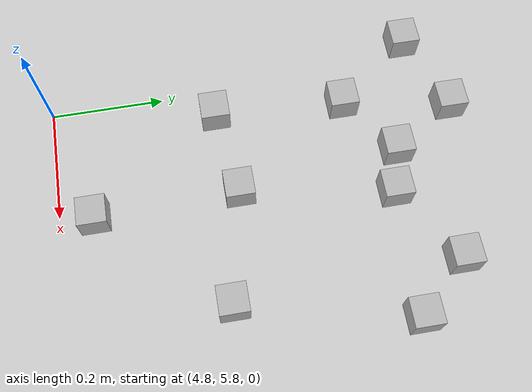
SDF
<sdf version="1.6">
 <world name="default">
  <model name="ground_plane">
   <static>1</static>
   <link name="link">
    <collision name="collision">
     <geometry><plane><normal>0 0 1</normal><size>100 100</size></plane></geometry>
     <surface><friction><ode><mu>100</mu><mu2>50</mu2></ode></friction></surface>
    </collision>
    <visual name="visual">
     <cast_shadows>0</cast_shadows>
     <geometry><plane><normal>0 0 1</normal><size>100 100</size></plane></geometry>
     <material>
      <script><uri>file://media/materials/scripts/gazebo.material</uri><name>Gazebo/Grey</name></script>
     </material>
    </visual>
   </link>
  </model>
  <model name="at108">
   <static>0</static>
   <link name="link">
    <inertial>
     <mass>0.01</mass>
     <inertia><ixx>4e-05</ixx><ixy>0</ixy><ixz>0</ixz><iyy>4e-05</iyy><iyz>0</iyz><izz>4e-05</izz></inertia>
    </inertial>
    <visual name="visual">
     <geometry><box><size>0.05 0.05 0.05</size></box></geometry>
     <material>
      <script>
       <uri>model://at0/materials/scripts</uri>
       <uri>model://at0/materials/textures</uri>
       <name>at0/Diffuse</name>
      </script>
     </material>
    </visual>
    <collision name="collision">
     <geometry><box><size>0.05 0.05 0.05</size></box></geometry>
     <surface><friction><ode><mu>0.8</mu><mu2>0.7</mu2></ode></friction></surface>
    </collision>
   </link>
   <pose>5.00316 6.11146 0.025 0 -0 0</pose>
  </model>
  <model name="at109">
   <static>0</static>
   <link name="link">
    <inertial>
     <mass>0.01</mass>
     <inertia><ixx>4e-05</ixx><ixy>0</ixy><ixz>0</ixz><iyy>4e-05</iyy><iyz>0</iyz><izz>4e-05</izz></inertia>
    </inertial>
    <visual name="visual">
     <geometry><box><size>0.05 0.05 0.05</size></box></geometry>
     <material>
      <script>
       <uri>model://at0/materials/scripts</uri>
       <uri>model://at0/materials/textures</uri>
       <name>at0/Diffuse</name>
      </script>
     </material>
    </visual>
    <collision name="collision">
     <geometry><box><size>0.05 0.05 0.05</size></box></geometry>
     <surface><friction><ode><mu>0.8</mu><mu2>0.7</mu2></ode></friction></surface>
    </collision>
   </link>
   <pose>5.19801 6.07112 0.025 0 -0 0</pose>
  </model>
  <model name="at112">
   <static>0</static>
   <link name="link">
    <inertial>
     <mass>0.01</mass>
     <inertia><ixx>4e-05</ixx><ixy>0</ixy><ixz>0</ixz><iyy>4e-05</iyy><iyz>0</iyz><izz>4e-05</izz></inertia>
    </inertial>
    <visual name="visual">
     <geometry><box><size>0.05 0.05 0.05</size></box></geometry>
     <material>
      <script>
       <uri>model://at0/materials/scripts</uri>
       <uri>model://at0/materials/textures</uri>
       <name>at0/Diffuse</name>
      </script>
     </material>
    </visual>
    <collision name="collision">
     <geometry><box><size>0.05 0.05 0.05</size></box></geometry>
     <surface><friction><ode><mu>0.8</mu><mu2>0.7</mu2></ode></friction></surface>
    </collision>
   </link>
   <pose>5.18187 6.45816 0.025 0 -0 0</pose>
  </model>
  <model name="at114">
   <static>0</static>
   <link name="link">
    <inertial>
     <mass>0.01</mass>
     <inertia><ixx>4e-05</ixx><ixy>0</ixy><ixz>0</ixz><iyy>4e-05</iyy><iyz>0</iyz><izz>4e-05</izz></inertia>
    </inertial>
    <visual name="visual">
     <geometry><box><size>0.05 0.05 0.05</size></box></geometry>
     <material>
      <script>
       <uri>model://at0/materials/scripts</uri>
       <uri>model://at0/materials/textures</uri>
       <name>at0/Diffuse</name>
      </script>
     </material>
    </visual>
    <collision name="collision">
     <geometry><box><size>0.05 0.05 0.05</size></box></geometry>
     <surface><friction><ode><mu>0.8</mu><mu2>0.7</mu2></ode></friction></surface>
    </collision>
   </link>
   <pose>5.2675 6.36795 0.025 0 -0 0</pose>
  </model>
  <model name="at115">
   <static>0</static>
   <link name="link">
    <inertial>
     <mass>0.01</mass>
     <inertia><ixx>4e-05</ixx><ixy>0</ixy><ixz>0</ixz><iyy>4e-05</iyy><iyz>0</iyz><izz>4e-05</izz></inertia>
    </inertial>
    <visual name="visual">
     <geometry><box><size>0.05 0.05 0.05</size></box></geometry>
     <material>
      <script>
       <uri>model://at0/materials/scripts</uri>
       <uri>model://at0/materials/textures</uri>
       <name>at0/Diffuse</name>
      </script>
     </material>
    </visual>
    <collision name="collision">
     <geometry><box><size>0.05 0.05 0.05</size></box></geometry>
     <surface><friction><ode><mu>0.8</mu><mu2>0.7</mu2></ode></friction></surface>
    </collision>
   </link>
   <pose>4.8491 6.09117 0.025 0 -0 0</pose>
  </model>
  <model name="at116">
   <static>0</static>
   <link name="link">
    <inertial>
     <mass>0.01</mass>
     <inertia><ixx>4e-05</ixx><ixy>0</ixy><ixz>0</ixz><iyy>4e-05</iyy><iyz>0</iyz><izz>4e-05</izz></inertia>
    </inertial>
    <visual name="visual">
     <geometry><box><size>0.05 0.05 0.05</size></box></geometry>
     <material>
      <script>
       <uri>model://at0/materials/scripts</uri>
       <uri>model://at0/materials/textures</uri>
       <name>at0/Diffuse</name>
      </script>
     </material>
    </visual>
    <collision name="collision">
     <geometry><box><size>0.05 0.05 0.05</size></box></geometry>
     <surface><friction><ode><mu>0.8</mu><mu2>0.7</mu2></ode></friction></surface>
    </collision>
   </link>
   <pose>4.96945 6.39709 0.024997 -2.9e-05 -2.9e-05 -0.000431</pose>
  </model>
  <model name="at117">
   <static>0</static>
   <link name="link">
    <inertial>
     <mass>0.01</mass>
     <inertia><ixx>4e-05</ixx><ixy>0</ixy><ixz>0</ixz><iyy>4e-05</iyy><iyz>0</iyz><izz>4e-05</izz></inertia>
    </inertial>
    <visual name="visual">
     <geometry><box><size>0.05 0.05 0.05</size></box></geometry>
     <material>
      <script>
       <uri>model://at0/materials/scripts</uri>
       <uri>model://at0/materials/textures</uri>
       <name>at0/Diffuse</name>
      </script>
     </material>
    </visual>
    <collision name="collision">
     <geometry><box><size>0.05 0.05 0.05</size></box></geometry>
     <surface><friction><ode><mu>0.8</mu><mu2>0.7</mu2></ode></friction></surface>
    </collision>
   </link>
   <pose>5.01147 5.86118 0.025 0 -0 0</pose>
  </model>
  <model name="at118">
   <static>0</static>
   <link name="link">
    <inertial>
     <mass>0.01</mass>
     <inertia><ixx>4e-05</ixx><ixy>0</ixy><ixz>0</ixz><iyy>4e-05</iyy><iyz>0</iyz><izz>4e-05</izz></inertia>
    </inertial>
    <visual name="visual">
     <geometry><box><size>0.05 0.05 0.05</size></box></geometry>
     <material>
      <script>
       <uri>model://at0/materials/scripts</uri>
       <uri>model://at0/materials/textures</uri>
       <name>at0/Diffuse</name>
      </script>
     </material>
    </visual>
    <collision name="collision">
     <geometry><box><size>0.05 0.05 0.05</size></box></geometry>
     <surface><friction><ode><mu>0.8</mu><mu2>0.7</mu2></ode></friction></surface>
    </collision>
   </link>
   <pose>5.04699 6.37593 0.025 0 -0 0</pose>
  </model>
  <model name="at121">
   <static>0</static>
   <link name="link">
    <inertial>
     <mass>0.01</mass>
     <inertia><ixx>4e-05</ixx><ixy>0</ixy><ixz>0</ixz><iyy>4e-05</iyy><iyz>0</iyz><izz>4e-05</izz></inertia>
    </inertial>
    <visual name="visual">
     <geometry><box><size>0.05 0.05 0.05</size></box></geometry>
     <material>
      <script>
       <uri>model://at0/materials/scripts</uri>
       <uri>model://at0/materials/textures</uri>
       <name>at0/Diffuse</name>
      </script>
     </material>
    </visual>
    <collision name="collision">
     <geometry><box><size>0.05 0.05 0.05</size></box></geometry>
     <surface><friction><ode><mu>0.8</mu><mu2>0.7</mu2></ode></friction></surface>
    </collision>
   </link>
   <pose>4.75407 6.45955 0.025 0 -0 0</pose>
  </model>
  <model name="at122">
   <static>0</static>
   <link name="link">
    <inertial>
     <mass>0.01</mass>
     <inertia><ixx>4e-05</ixx><ixy>0</ixy><ixz>0</ixz><iyy>4e-05</iyy><iyz>0</iyz><izz>4e-05</izz></inertia>
    </inertial>
    <visual name="visual">
     <geometry><box><size>0.05 0.05 0.05</size></box></geometry>
     <material>
      <script>
       <uri>model://at0/materials/scripts</uri>
       <uri>model://at0/materials/textures</uri>
       <name>at0/Diffuse</name>
      </script>
     </material>
    </visual>
    <collision name="collision">
     <geometry><box><size>0.05 0.05 0.05</size></box></geometry>
     <surface><friction><ode><mu>0.8</mu><mu2>0.7</mu2></ode></friction></surface>
    </collision>
   </link>
   <pose>4.86264 6.32152 0.025 0 -0 0</pose>
  </model>
  <model name="at123">
   <static>0</static>
   <link name="link">
    <inertial>
     <mass>0.01</mass>
     <inertia><ixx>4e-05</ixx><ixy>0</ixy><ixz>0</ixz><iyy>4e-05</iyy><iyz>0</iyz><izz>4e-05</izz></inertia>
    </inertial>
    <visual name="visual">
     <geometry><box><size>0.05 0.05 0.05</size></box></geometry>
     <material>
      <script>
       <uri>model://at0/materials/scripts</uri>
       <uri>model://at0/materials/textures</uri>
       <name>at0/Diffuse</name>
      </script>
     </material>
    </visual>
    <collision name="collision">
     <geometry><box><size>0.05 0.05 0.05</size></box></geometry>
     <surface><friction><ode><mu>0.8</mu><mu2>0.7</mu2></ode></friction></surface>
    </collision>
   </link>
   <pose>4.89642 6.51176 0.024993 -2.9e-05 3e-05 -0.000428</pose>
  </model>
 </world>
</sdf>
